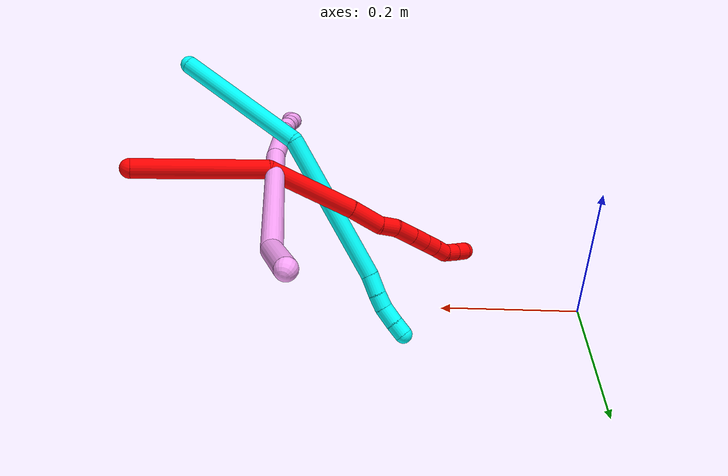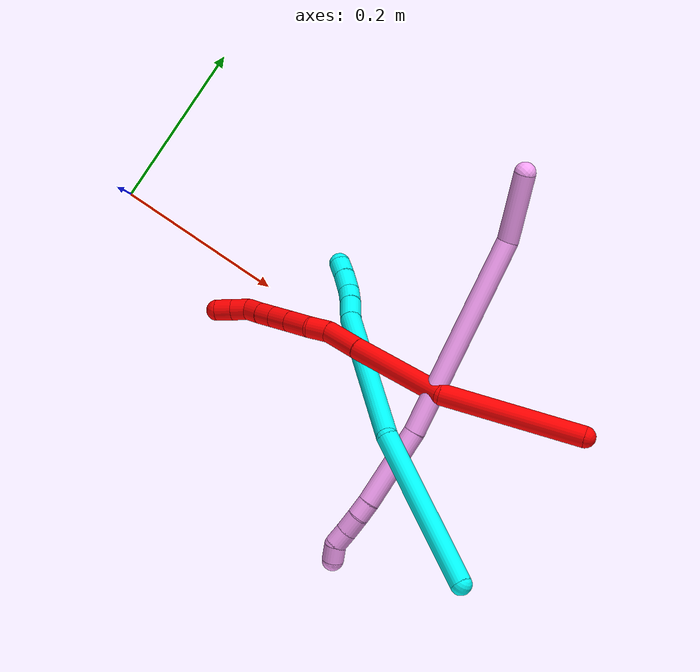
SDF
<sdf version="1.7">
 <world name="default">
  <model name="2">
   <static>0</static>
   <link name="2">
    <collision name="collision-cylinder-e_1_1_4">
     <pose>-0.023189 0.018988 -0.079342 -2.90669 -0.27694 1.73649</pose>
     <geometry><cylinder><radius>0.0125</radius><length>0.169629</length></cylinder></geometry>
     <surface>
      <friction><ode><mu>1.16</mu><mu2>1.16</mu2><slip1>0</slip1><slip2>0</slip2></ode></friction>
      <contact><ode><kp>1e+06</kp><kd>1</kd><max_vel>0</max_vel><min_depth>0.001</min_depth></ode></contact>
     </surface>
    </collision>
    <visual name="visual-cylinder-e_1_1_4">
     <pose>-0.023189 0.018988 -0.079342 -2.90669 -0.27694 1.73649</pose>
     <geometry><cylinder><radius>0.0125</radius><length>0.169629</length></cylinder></geometry>
     <material><ambient>1 0 0 1</ambient></material>
    </visual>
    <collision name="collision-cylinder-e_2_4_5">
     <pose>-0.04245 0.035373 -0.220183 3.09929 0.063738 1.96983</pose>
     <geometry><cylinder><radius>0.0125</radius><length>0.123358</length></cylinder></geometry>
     <surface>
      <friction><ode><mu>1.16</mu><mu2>1.16</mu2><slip1>0</slip1><slip2>0</slip2></ode></friction>
      <contact><ode><kp>1e+06</kp><kd>1</kd><max_vel>0</max_vel><min_depth>0.001</min_depth></ode></contact>
     </surface>
    </collision>
    <visual name="visual-cylinder-e_2_4_5">
     <pose>-0.04245 0.035373 -0.220183 3.09929 0.063738 1.96983</pose>
     <geometry><cylinder><radius>0.0125</radius><length>0.123358</length></cylinder></geometry>
     <material><ambient>1 0 0 1</ambient></material>
    </visual>
    <collision name="collision-cylinder-e_3_5_6">
     <pose>-0.035878 0.030624 -0.304625 3.04837 0.114223 1.77293</pose>
     <geometry><cylinder><radius>0.0125</radius><length>0.046388</length></cylinder></geometry>
     <surface>
      <friction><ode><mu>1.16</mu><mu2>1.16</mu2><slip1>0</slip1><slip2>0</slip2></ode></friction>
      <contact><ode><kp>1e+06</kp><kd>1</kd><max_vel>0</max_vel><min_depth>0.001</min_depth></ode></contact>
     </surface>
    </collision>
    <visual name="visual-cylinder-e_3_5_6">
     <pose>-0.035878 0.030624 -0.304625 3.04837 0.114223 1.77293</pose>
     <geometry><cylinder><radius>0.0125</radius><length>0.046388</length></cylinder></geometry>
     <material><ambient>1 0 0 1</ambient></material>
    </visual>
    <collision name="collision-cylinder-e_4_6_7">
     <pose>-0.036019 0.028513 -0.33995 -3.13883 -0.221199 3.11675</pose>
     <geometry><cylinder><radius>0.0125</radius><length>0.025383</length></cylinder></geometry>
     <surface>
      <friction><ode><mu>1.16</mu><mu2>1.16</mu2><slip1>0</slip1><slip2>0</slip2></ode></friction>
      <contact><ode><kp>1e+06</kp><kd>1</kd><max_vel>0</max_vel><min_depth>0.001</min_depth></ode></contact>
     </surface>
    </collision>
    <visual name="visual-cylinder-e_4_6_7">
     <pose>-0.036019 0.028513 -0.33995 -3.13883 -0.221199 3.11675</pose>
     <geometry><cylinder><radius>0.0125</radius><length>0.025383</length></cylinder></geometry>
     <material><ambient>1 0 0 1</ambient></material>
    </visual>
    <collision name="collision-cylinder-e_5_7_8">
     <pose>-0.039696 0.025449 -0.367116 2.93502 -0.059012 -0.554805</pose>
     <geometry><cylinder><radius>0.0125</radius><length>0.030263</length></cylinder></geometry>
     <surface>
      <friction><ode><mu>1.16</mu><mu2>1.16</mu2><slip1>0</slip1><slip2>0</slip2></ode></friction>
      <contact><ode><kp>1e+06</kp><kd>1</kd><max_vel>0</max_vel><min_depth>0.001</min_depth></ode></contact>
     </surface>
    </collision>
    <visual name="visual-cylinder-e_5_7_8">
     <pose>-0.039696 0.025449 -0.367116 2.93502 -0.059012 -0.554805</pose>
     <geometry><cylinder><radius>0.0125</radius><length>0.030263</length></cylinder></geometry>
     <material><ambient>1 0 0 1</ambient></material>
    </visual>
    <collision name="collision-cylinder-e_6_8_9">
     <pose>-0.041322 0.019716 -0.393725 2.92229 -0.06047 -0.536203</pose>
     <geometry><cylinder><radius>0.0125</radius><length>0.024274</length></cylinder></geometry>
     <surface>
      <friction><ode><mu>1.16</mu><mu2>1.16</mu2><slip1>0</slip1><slip2>0</slip2></ode></friction>
      <contact><ode><kp>1e+06</kp><kd>1</kd><max_vel>0</max_vel><min_depth>0.001</min_depth></ode></contact>
     </surface>
    </collision>
    <visual name="visual-cylinder-e_6_8_9">
     <pose>-0.041322 0.019716 -0.393725 2.92229 -0.06047 -0.536203</pose>
     <geometry><cylinder><radius>0.0125</radius><length>0.024274</length></cylinder></geometry>
     <material><ambient>1 0 0 1</ambient></material>
    </visual>
    <collision name="collision-cylinder-e_7_9_10">
     <pose>-0.042683 0.014843 -0.415602 2.9226 -0.060893 -0.540503</pose>
     <geometry><cylinder><radius>0.0125</radius><length>0.020636</length></cylinder></geometry>
     <surface>
      <friction><ode><mu>1.16</mu><mu2>1.16</mu2><slip1>0</slip1><slip2>0</slip2></ode></friction>
      <contact><ode><kp>1e+06</kp><kd>1</kd><max_vel>0</max_vel><min_depth>0.001</min_depth></ode></contact>
     </surface>
    </collision>
    <visual name="visual-cylinder-e_7_9_10">
     <pose>-0.042683 0.014843 -0.415602 2.9226 -0.060893 -0.540503</pose>
     <geometry><cylinder><radius>0.0125</radius><length>0.020636</length></cylinder></geometry>
     <material><ambient>1 0 0 1</ambient></material>
    </visual>
    <collision name="collision-cylinder-e_8_10_11">
     <pose>-0.043473 0.010333 -0.435396 2.91243 -0.016198 -0.140517</pose>
     <geometry><cylinder><radius>0.0125</radius><length>0.020006</length></cylinder></geometry>
     <surface>
      <friction><ode><mu>1.16</mu><mu2>1.16</mu2><slip1>0</slip1><slip2>0</slip2></ode></friction>
      <contact><ode><kp>1e+06</kp><kd>1</kd><max_vel>0</max_vel><min_depth>0.001</min_depth></ode></contact>
     </surface>
    </collision>
    <visual name="visual-cylinder-e_8_10_11">
     <pose>-0.043473 0.010333 -0.435396 2.91243 -0.016198 -0.140517</pose>
     <geometry><cylinder><radius>0.0125</radius><length>0.020006</length></cylinder></geometry>
     <material><ambient>1 0 0 1</ambient></material>
    </visual>
    <collision name="collision-cylinder-e_9_11_12">
     <pose>-0.048078 0.00747 -0.454077 3.07559 -0.460326 -2.86166</pose>
     <geometry><cylinder><radius>0.0125</radius><length>0.020003</length></cylinder></geometry>
     <surface>
      <friction><ode><mu>1.16</mu><mu2>1.16</mu2><slip1>0</slip1><slip2>0</slip2></ode></friction>
      <contact><ode><kp>1e+06</kp><kd>1</kd><max_vel>0</max_vel><min_depth>0.001</min_depth></ode></contact>
     </surface>
    </collision>
    <visual name="visual-cylinder-e_9_11_12">
     <pose>-0.048078 0.00747 -0.454077 3.07559 -0.460326 -2.86166</pose>
     <geometry><cylinder><radius>0.0125</radius><length>0.020003</length></cylinder></geometry>
     <material><ambient>1 0 0 1</ambient></material>
    </visual>
    <collision name="collision-cylinder-e_10_12_2">
     <pose>-0.057173 0.006464 -0.471894 3.09483 -0.482283 -2.95196</pose>
     <geometry><cylinder><radius>0.0125</radius><length>0.02006</length></cylinder></geometry>
     <surface>
      <friction><ode><mu>1.16</mu><mu2>1.16</mu2><slip1>0</slip1><slip2>0</slip2></ode></friction>
      <contact><ode><kp>1e+06</kp><kd>1</kd><max_vel>0</max_vel><min_depth>0.001</min_depth></ode></contact>
     </surface>
    </collision>
    <visual name="visual-cylinder-e_10_12_2">
     <pose>-0.057173 0.006464 -0.471894 3.09483 -0.482283 -2.95196</pose>
     <geometry><cylinder><radius>0.0125</radius><length>0.02006</length></cylinder></geometry>
     <material><ambient>1 0 0 1</ambient></material>
    </visual>
    <collision name="collision-sphere-2">
     <pose>-0.061825 0.006048 -0.48077 0 -0 0</pose>
     <geometry><sphere><radius>0.0125</radius></sphere></geometry>
     <surface>
      <friction><ode><mu>1.16</mu><mu2>1.16</mu2><slip1>0</slip1><slip2>0</slip2></ode></friction>
      <contact><ode><kp>1e+06</kp><kd>1</kd><max_vel>0</max_vel><min_depth>0.001</min_depth></ode></contact>
     </surface>
    </collision>
    <visual name="visual-sphere-2">
     <pose>-0.061825 0.006048 -0.48077 0 -0 0</pose>
     <geometry><sphere><radius>0.0125</radius></sphere></geometry>
     <material><ambient>1 0 0 1</ambient></material>
    </visual>
    <collision name="collision-sphere-12">
     <pose>-0.052521 0.006879 -0.463018 0 -0 0</pose>
     <geometry><sphere><radius>0.0125</radius></sphere></geometry>
     <surface>
      <friction><ode><mu>1.16</mu><mu2>1.16</mu2><slip1>0</slip1><slip2>0</slip2></ode></friction>
      <contact><ode><kp>1e+06</kp><kd>1</kd><max_vel>0</max_vel><min_depth>0.001</min_depth></ode></contact>
     </surface>
    </collision>
    <visual name="visual-sphere-12">
     <pose>-0.052521 0.006879 -0.463018 0 -0 0</pose>
     <geometry><sphere><radius>0.0125</radius></sphere></geometry>
     <material><ambient>1 0 0 1</ambient></material>
    </visual>
    <collision name="collision-sphere-11">
     <pose>-0.043635 0.008061 -0.445136 0 -0 0</pose>
     <geometry><sphere><radius>0.0125</radius></sphere></geometry>
     <surface>
      <friction><ode><mu>1.16</mu><mu2>1.16</mu2><slip1>0</slip1><slip2>0</slip2></ode></friction>
      <contact><ode><kp>1e+06</kp><kd>1</kd><max_vel>0</max_vel><min_depth>0.001</min_depth></ode></contact>
     </surface>
    </collision>
    <visual name="visual-sphere-11">
     <pose>-0.043635 0.008061 -0.445136 0 -0 0</pose>
     <geometry><sphere><radius>0.0125</radius></sphere></geometry>
     <material><ambient>1 0 0 1</ambient></material>
    </visual>
    <collision name="collision-sphere-10">
     <pose>-0.043311 0.012605 -0.425655 0 -0 0</pose>
     <geometry><sphere><radius>0.0125</radius></sphere></geometry>
     <surface>
      <friction><ode><mu>1.16</mu><mu2>1.16</mu2><slip1>0</slip1><slip2>0</slip2></ode></friction>
      <contact><ode><kp>1e+06</kp><kd>1</kd><max_vel>0</max_vel><min_depth>0.001</min_depth></ode></contact>
     </surface>
    </collision>
    <visual name="visual-sphere-10">
     <pose>-0.043311 0.012605 -0.425655 0 -0 0</pose>
     <geometry><sphere><radius>0.0125</radius></sphere></geometry>
     <material><ambient>1 0 0 1</ambient></material>
    </visual>
    <collision name="collision-sphere-9">
     <pose>-0.042055 0.01708 -0.405549 0 -0 0</pose>
     <geometry><sphere><radius>0.0125</radius></sphere></geometry>
     <surface>
      <friction><ode><mu>1.16</mu><mu2>1.16</mu2><slip1>0</slip1><slip2>0</slip2></ode></friction>
      <contact><ode><kp>1e+06</kp><kd>1</kd><max_vel>0</max_vel><min_depth>0.001</min_depth></ode></contact>
     </surface>
    </collision>
    <visual name="visual-sphere-9">
     <pose>-0.042055 0.01708 -0.405549 0 -0 0</pose>
     <geometry><sphere><radius>0.0125</radius></sphere></geometry>
     <material><ambient>1 0 0 1</ambient></material>
    </visual>
    <collision name="collision-sphere-4">
     <pose>-0.046379 0.037976 -0.158684 0 -0 0</pose>
     <geometry><sphere><radius>0.0125</radius></sphere></geometry>
     <surface>
      <friction><ode><mu>1.16</mu><mu2>1.16</mu2><slip1>0</slip1><slip2>0</slip2></ode></friction>
      <contact><ode><kp>1e+06</kp><kd>1</kd><max_vel>0</max_vel><min_depth>0.001</min_depth></ode></contact>
     </surface>
    </collision>
    <visual name="visual-sphere-4">
     <pose>-0.046379 0.037976 -0.158684 0 -0 0</pose>
     <geometry><sphere><radius>0.0125</radius></sphere></geometry>
     <material><ambient>1 0 0 1</ambient></material>
    </visual>
    <collision name="collision-sphere-1">
     <geometry><sphere><radius>0.0125</radius></sphere></geometry>
     <surface>
      <friction><ode><mu>1.16</mu><mu2>1.16</mu2><slip1>0</slip1><slip2>0</slip2></ode></friction>
      <contact><ode><kp>1e+06</kp><kd>1</kd><max_vel>0</max_vel><min_depth>0.001</min_depth></ode></contact>
     </surface>
    </collision>
    <visual name="visual-sphere-1">
     <geometry><sphere><radius>0.0125</radius></sphere></geometry>
     <material><ambient>1 0 0 1</ambient></material>
    </visual>
    <collision name="collision-sphere-8">
     <pose>-0.040588 0.022351 -0.3819 0 -0 0</pose>
     <geometry><sphere><radius>0.0125</radius></sphere></geometry>
     <surface>
      <friction><ode><mu>1.16</mu><mu2>1.16</mu2><slip1>0</slip1><slip2>0</slip2></ode></friction>
      <contact><ode><kp>1e+06</kp><kd>1</kd><max_vel>0</max_vel><min_depth>0.001</min_depth></ode></contact>
     </surface>
    </collision>
    <visual name="visual-sphere-8">
     <pose>-0.040588 0.022351 -0.3819 0 -0 0</pose>
     <geometry><sphere><radius>0.0125</radius></sphere></geometry>
     <material><ambient>1 0 0 1</ambient></material>
    </visual>
    <collision name="collision-sphere-5">
     <pose>-0.038521 0.032769 -0.281682 0 -0 0</pose>
     <geometry><sphere><radius>0.0125</radius></sphere></geometry>
     <surface>
      <friction><ode><mu>1.16</mu><mu2>1.16</mu2><slip1>0</slip1><slip2>0</slip2></ode></friction>
      <contact><ode><kp>1e+06</kp><kd>1</kd><max_vel>0</max_vel><min_depth>0.001</min_depth></ode></contact>
     </surface>
    </collision>
    <visual name="visual-sphere-5">
     <pose>-0.038521 0.032769 -0.281682 0 -0 0</pose>
     <geometry><sphere><radius>0.0125</radius></sphere></geometry>
     <material><ambient>1 0 0 1</ambient></material>
    </visual>
    <collision name="collision-sphere-6">
     <pose>-0.033234 0.028479 -0.327568 0 -0 0</pose>
     <geometry><sphere><radius>0.0125</radius></sphere></geometry>
     <surface>
      <friction><ode><mu>1.16</mu><mu2>1.16</mu2><slip1>0</slip1><slip2>0</slip2></ode></friction>
      <contact><ode><kp>1e+06</kp><kd>1</kd><max_vel>0</max_vel><min_depth>0.001</min_depth></ode></contact>
     </surface>
    </collision>
    <visual name="visual-sphere-6">
     <pose>-0.033234 0.028479 -0.327568 0 -0 0</pose>
     <geometry><sphere><radius>0.0125</radius></sphere></geometry>
     <material><ambient>1 0 0 1</ambient></material>
    </visual>
    <collision name="collision-sphere-7">
     <pose>-0.038803 0.028548 -0.352332 0 -0 0</pose>
     <geometry><sphere><radius>0.0125</radius></sphere></geometry>
     <surface>
      <friction><ode><mu>1.16</mu><mu2>1.16</mu2><slip1>0</slip1><slip2>0</slip2></ode></friction>
      <contact><ode><kp>1e+06</kp><kd>1</kd><max_vel>0</max_vel><min_depth>0.001</min_depth></ode></contact>
     </surface>
    </collision>
    <visual name="visual-sphere-7">
     <pose>-0.038803 0.028548 -0.352332 0 -0 0</pose>
     <geometry><sphere><radius>0.0125</radius></sphere></geometry>
     <material><ambient>1 0 0 1</ambient></material>
    </visual>
    <inertial>
     <pose>-0.035624 0.023539 -0.239767 0 -0 0</pose>
     <mass>0.5</mass>
     <inertia>
      <ixx>0.000414</ixx>
      <ixy>0</ixy>
      <ixz>0</ixz>
      <iyy>0.000702</iyy>
      <iyz>0</iyz>
      <izz>-1.6e-05</izz>
     </inertia>
    </inertial>
   </link>
   <pose>0.593774 0.060457 0.26092 1.049 0.365775 1.51322</pose>
  </model>
  <model name="3">
   <static>0</static>
   <link name="3">
    <collision name="collision-cylinder-e_1_1_4">
     <pose>-0.058626 0.071774 -0.024668 -1.90183 -0.657725 0.891998</pose>
     <geometry><cylinder><radius>0.0125</radius><length>0.191803</length></cylinder></geometry>
     <surface>
      <friction><ode><mu>1.16</mu><mu2>1.16</mu2><slip1>0</slip1><slip2>0</slip2></ode></friction>
      <contact><ode><kp>1e+06</kp><kd>1</kd><max_vel>0</max_vel><min_depth>0.001</min_depth></ode></contact>
     </surface>
    </collision>
    <visual name="visual-cylinder-e_1_1_4">
     <pose>-0.058626 0.071774 -0.024668 -1.90183 -0.657725 0.891998</pose>
     <geometry><cylinder><radius>0.0125</radius><length>0.191803</length></cylinder></geometry>
     <material><ambient>0.003922 1 0.996078 1</ambient></material>
    </visual>
    <collision name="collision-cylinder-e_2_4_5">
     <pose>-0.213618 0.188192 -0.05125 -1.61366 -1.13661 1.17585</pose>
     <geometry><cylinder><radius>0.0125</radius><length>0.212444</length></cylinder></geometry>
     <surface>
      <friction><ode><mu>1.16</mu><mu2>1.16</mu2><slip1>0</slip1><slip2>0</slip2></ode></friction>
      <contact><ode><kp>1e+06</kp><kd>1</kd><max_vel>0</max_vel><min_depth>0.001</min_depth></ode></contact>
     </surface>
    </collision>
    <visual name="visual-cylinder-e_2_4_5">
     <pose>-0.213618 0.188192 -0.05125 -1.61366 -1.13661 1.17585</pose>
     <geometry><cylinder><radius>0.0125</radius><length>0.212444</length></cylinder></geometry>
     <material><ambient>0.003922 1 0.996078 1</ambient></material>
    </visual>
    <collision name="collision-cylinder-e_3_5_6">
     <pose>-0.323715 0.237162 -0.055493 -2.06456 -1.22718 1.73462</pose>
     <geometry><cylinder><radius>0.0125</radius><length>0.029166</length></cylinder></geometry>
     <surface>
      <friction><ode><mu>1.16</mu><mu2>1.16</mu2><slip1>0</slip1><slip2>0</slip2></ode></friction>
      <contact><ode><kp>1e+06</kp><kd>1</kd><max_vel>0</max_vel><min_depth>0.001</min_depth></ode></contact>
     </surface>
    </collision>
    <visual name="visual-cylinder-e_3_5_6">
     <pose>-0.323715 0.237162 -0.055493 -2.06456 -1.22718 1.73462</pose>
     <geometry><cylinder><radius>0.0125</radius><length>0.029166</length></cylinder></geometry>
     <material><ambient>0.003922 1 0.996078 1</ambient></material>
    </visual>
    <collision name="collision-cylinder-e_4_6_7">
     <pose>-0.347109 0.245183 -0.058942 -1.86519 -1.1907 1.48007</pose>
     <geometry><cylinder><radius>0.0125</radius><length>0.020813</length></cylinder></geometry>
     <surface>
      <friction><ode><mu>1.16</mu><mu2>1.16</mu2><slip1>0</slip1><slip2>0</slip2></ode></friction>
      <contact><ode><kp>1e+06</kp><kd>1</kd><max_vel>0</max_vel><min_depth>0.001</min_depth></ode></contact>
     </surface>
    </collision>
    <visual name="visual-cylinder-e_4_6_7">
     <pose>-0.347109 0.245183 -0.058942 -1.86519 -1.1907 1.48007</pose>
     <geometry><cylinder><radius>0.0125</radius><length>0.020813</length></cylinder></geometry>
     <material><ambient>0.003922 1 0.996078 1</ambient></material>
    </visual>
    <collision name="collision-cylinder-e_5_7_8">
     <pose>-0.367483 0.255598 -0.062413 -1.90725 -0.984166 1.2939</pose>
     <geometry><cylinder><radius>0.0125</radius><length>0.025721</length></cylinder></geometry>
     <surface>
      <friction><ode><mu>1.16</mu><mu2>1.16</mu2><slip1>0</slip1><slip2>0</slip2></ode></friction>
      <contact><ode><kp>1e+06</kp><kd>1</kd><max_vel>0</max_vel><min_depth>0.001</min_depth></ode></contact>
     </surface>
    </collision>
    <visual name="visual-cylinder-e_5_7_8">
     <pose>-0.367483 0.255598 -0.062413 -1.90725 -0.984166 1.2939</pose>
     <geometry><cylinder><radius>0.0125</radius><length>0.025721</length></cylinder></geometry>
     <material><ambient>0.003922 1 0.996078 1</ambient></material>
    </visual>
    <collision name="collision-cylinder-e_6_8_2">
     <pose>-0.386374 0.267946 -0.066151 -1.81263 -0.95431 1.16677</pose>
     <geometry><cylinder><radius>0.0125</radius><length>0.020053</length></cylinder></geometry>
     <surface>
      <friction><ode><mu>1.16</mu><mu2>1.16</mu2><slip1>0</slip1><slip2>0</slip2></ode></friction>
      <contact><ode><kp>1e+06</kp><kd>1</kd><max_vel>0</max_vel><min_depth>0.001</min_depth></ode></contact>
     </surface>
    </collision>
    <visual name="visual-cylinder-e_6_8_2">
     <pose>-0.386374 0.267946 -0.066151 -1.81263 -0.95431 1.16677</pose>
     <geometry><cylinder><radius>0.0125</radius><length>0.020053</length></cylinder></geometry>
     <material><ambient>0.003922 1 0.996078 1</ambient></material>
    </visual>
    <collision name="collision-sphere-2">
     <pose>-0.394555 0.273575 -0.06754 0 -0 0</pose>
     <geometry><sphere><radius>0.0125</radius></sphere></geometry>
     <surface>
      <friction><ode><mu>1.16</mu><mu2>1.16</mu2><slip1>0</slip1><slip2>0</slip2></ode></friction>
      <contact><ode><kp>1e+06</kp><kd>1</kd><max_vel>0</max_vel><min_depth>0.001</min_depth></ode></contact>
     </surface>
    </collision>
    <visual name="visual-sphere-2">
     <pose>-0.394555 0.273575 -0.06754 0 -0 0</pose>
     <geometry><sphere><radius>0.0125</radius></sphere></geometry>
     <material><ambient>0.003922 1 0.996078 1</ambient></material>
    </visual>
    <collision name="collision-sphere-4">
     <pose>-0.117252 0.143549 -0.049335 0 -0 0</pose>
     <geometry><sphere><radius>0.0125</radius></sphere></geometry>
     <surface>
      <friction><ode><mu>1.16</mu><mu2>1.16</mu2><slip1>0</slip1><slip2>0</slip2></ode></friction>
      <contact><ode><kp>1e+06</kp><kd>1</kd><max_vel>0</max_vel><min_depth>0.001</min_depth></ode></contact>
     </surface>
    </collision>
    <visual name="visual-sphere-4">
     <pose>-0.117252 0.143549 -0.049335 0 -0 0</pose>
     <geometry><sphere><radius>0.0125</radius></sphere></geometry>
     <material><ambient>0.003922 1 0.996078 1</ambient></material>
    </visual>
    <collision name="collision-sphere-1">
     <geometry><sphere><radius>0.0125</radius></sphere></geometry>
     <surface>
      <friction><ode><mu>1.16</mu><mu2>1.16</mu2><slip1>0</slip1><slip2>0</slip2></ode></friction>
      <contact><ode><kp>1e+06</kp><kd>1</kd><max_vel>0</max_vel><min_depth>0.001</min_depth></ode></contact>
     </surface>
    </collision>
    <visual name="visual-sphere-1">
     <geometry><sphere><radius>0.0125</radius></sphere></geometry>
     <material><ambient>0.003922 1 0.996078 1</ambient></material>
    </visual>
    <collision name="collision-sphere-8">
     <pose>-0.378194 0.262318 -0.064763 0 -0 0</pose>
     <geometry><sphere><radius>0.0125</radius></sphere></geometry>
     <surface>
      <friction><ode><mu>1.16</mu><mu2>1.16</mu2><slip1>0</slip1><slip2>0</slip2></ode></friction>
      <contact><ode><kp>1e+06</kp><kd>1</kd><max_vel>0</max_vel><min_depth>0.001</min_depth></ode></contact>
     </surface>
    </collision>
    <visual name="visual-sphere-8">
     <pose>-0.378194 0.262318 -0.064763 0 -0 0</pose>
     <geometry><sphere><radius>0.0125</radius></sphere></geometry>
     <material><ambient>0.003922 1 0.996078 1</ambient></material>
    </visual>
    <collision name="collision-sphere-5">
     <pose>-0.309984 0.232836 -0.053165 0 -0 0</pose>
     <geometry><sphere><radius>0.0125</radius></sphere></geometry>
     <surface>
      <friction><ode><mu>1.16</mu><mu2>1.16</mu2><slip1>0</slip1><slip2>0</slip2></ode></friction>
      <contact><ode><kp>1e+06</kp><kd>1</kd><max_vel>0</max_vel><min_depth>0.001</min_depth></ode></contact>
     </surface>
    </collision>
    <visual name="visual-sphere-5">
     <pose>-0.309984 0.232836 -0.053165 0 -0 0</pose>
     <geometry><sphere><radius>0.0125</radius></sphere></geometry>
     <material><ambient>0.003922 1 0.996078 1</ambient></material>
    </visual>
    <collision name="collision-sphere-6">
     <pose>-0.337445 0.241488 -0.057822 0 -0 0</pose>
     <geometry><sphere><radius>0.0125</radius></sphere></geometry>
     <surface>
      <friction><ode><mu>1.16</mu><mu2>1.16</mu2><slip1>0</slip1><slip2>0</slip2></ode></friction>
      <contact><ode><kp>1e+06</kp><kd>1</kd><max_vel>0</max_vel><min_depth>0.001</min_depth></ode></contact>
     </surface>
    </collision>
    <visual name="visual-sphere-6">
     <pose>-0.337445 0.241488 -0.057822 0 -0 0</pose>
     <geometry><sphere><radius>0.0125</radius></sphere></geometry>
     <material><ambient>0.003922 1 0.996078 1</ambient></material>
    </visual>
    <collision name="collision-sphere-7">
     <pose>-0.356773 0.248878 -0.060062 0 -0 0</pose>
     <geometry><sphere><radius>0.0125</radius></sphere></geometry>
     <surface>
      <friction><ode><mu>1.16</mu><mu2>1.16</mu2><slip1>0</slip1><slip2>0</slip2></ode></friction>
      <contact><ode><kp>1e+06</kp><kd>1</kd><max_vel>0</max_vel><min_depth>0.001</min_depth></ode></contact>
     </surface>
    </collision>
    <visual name="visual-sphere-7">
     <pose>-0.356773 0.248878 -0.060062 0 -0 0</pose>
     <geometry><sphere><radius>0.0125</radius></sphere></geometry>
     <material><ambient>0.003922 1 0.996078 1</ambient></material>
    </visual>
    <inertial>
     <pose>-0.180985 0.155429 -0.042793 0 -0 0</pose>
     <mass>0.5</mass>
     <inertia><ixx>0.00108</ixx><ixy>0</ixy><ixz>0</ixz><iyy>0.001521</iyy><iyz>0</iyz><izz>0.00031</izz></inertia>
    </inertial>
   </link>
   <pose>0.566434 -0.149637 0.310898 2.99999 -1.08424 -1.37226</pose>
  </model>
  <model name="4">
   <static>0</static>
   <link name="4">
    <collision name="collision-cylinder-e_1_1_4">
     <pose>0.003263 0.02725 0.030678 -0.726291 0.07935 -0.030166</pose>
     <geometry><cylinder><radius>0.0125</radius><length>0.082325</length></cylinder></geometry>
     <surface>
      <friction><ode><mu>1.16</mu><mu2>1.16</mu2><slip1>0</slip1><slip2>0</slip2></ode></friction>
      <contact><ode><kp>1e+06</kp><kd>1</kd><max_vel>0</max_vel><min_depth>0.001</min_depth></ode></contact>
     </surface>
    </collision>
    <visual name="visual-cylinder-e_1_1_4">
     <pose>0.003263 0.02725 0.030678 -0.726291 0.07935 -0.030166</pose>
     <geometry><cylinder><radius>0.0125</radius><length>0.082325</length></cylinder></geometry>
     <material><ambient>1 0.65098 0.996078 1</ambient></material>
    </visual>
    <collision name="collision-cylinder-e_2_4_5">
     <pose>0.002414 0.097774 0.172963 -0.369889 -0.034335 0.006424</pose>
     <geometry><cylinder><radius>0.0125</radius><length>0.239548</length></cylinder></geometry>
     <surface>
      <friction><ode><mu>1.16</mu><mu2>1.16</mu2><slip1>0</slip1><slip2>0</slip2></ode></friction>
      <contact><ode><kp>1e+06</kp><kd>1</kd><max_vel>0</max_vel><min_depth>0.001</min_depth></ode></contact>
     </surface>
    </collision>
    <visual name="visual-cylinder-e_2_4_5">
     <pose>0.002414 0.097774 0.172963 -0.369889 -0.034335 0.006424</pose>
     <geometry><cylinder><radius>0.0125</radius><length>0.239548</length></cylinder></geometry>
     <material><ambient>1 0.65098 0.996078 1</ambient></material>
    </visual>
    <collision name="collision-cylinder-e_3_5_6">
     <pose>0.000347 0.154011 0.330064 -0.277586 0.043197 -0.006035</pose>
     <geometry><cylinder><radius>0.0125</radius><length>0.094696</length></cylinder></geometry>
     <surface>
      <friction><ode><mu>1.16</mu><mu2>1.16</mu2><slip1>0</slip1><slip2>0</slip2></ode></friction>
      <contact><ode><kp>1e+06</kp><kd>1</kd><max_vel>0</max_vel><min_depth>0.001</min_depth></ode></contact>
     </surface>
    </collision>
    <visual name="visual-cylinder-e_3_5_6">
     <pose>0.000347 0.154011 0.330064 -0.277586 0.043197 -0.006035</pose>
     <geometry><cylinder><radius>0.0125</radius><length>0.094696</length></cylinder></geometry>
     <material><ambient>1 0.65098 0.996078 1</ambient></material>
    </visual>
    <collision name="collision-cylinder-e_4_6_7">
     <pose>0.003794 0.169753 0.385359 -0.2762 0.13675 -0.019035</pose>
     <geometry><cylinder><radius>0.0125</radius><length>0.02057</length></cylinder></geometry>
     <surface>
      <friction><ode><mu>1.16</mu><mu2>1.16</mu2><slip1>0</slip1><slip2>0</slip2></ode></friction>
      <contact><ode><kp>1e+06</kp><kd>1</kd><max_vel>0</max_vel><min_depth>0.001</min_depth></ode></contact>
     </surface>
    </collision>
    <visual name="visual-cylinder-e_4_6_7">
     <pose>0.003794 0.169753 0.385359 -0.2762 0.13675 -0.019035</pose>
     <geometry><cylinder><radius>0.0125</radius><length>0.02057</length></cylinder></geometry>
     <material><ambient>1 0.65098 0.996078 1</ambient></material>
    </visual>
    <collision name="collision-cylinder-e_5_7_8">
     <pose>0.008019 0.176225 0.405344 -0.347992 0.254963 -0.045052</pose>
     <geometry><cylinder><radius>0.0125</radius><length>0.022386</length></cylinder></geometry>
     <surface>
      <friction><ode><mu>1.16</mu><mu2>1.16</mu2><slip1>0</slip1><slip2>0</slip2></ode></friction>
      <contact><ode><kp>1e+06</kp><kd>1</kd><max_vel>0</max_vel><min_depth>0.001</min_depth></ode></contact>
     </surface>
    </collision>
    <visual name="visual-cylinder-e_5_7_8">
     <pose>0.008019 0.176225 0.405344 -0.347992 0.254963 -0.045052</pose>
     <geometry><cylinder><radius>0.0125</radius><length>0.022386</length></cylinder></geometry>
     <material><ambient>1 0.65098 0.996078 1</ambient></material>
    </visual>
    <collision name="collision-cylinder-e_6_8_9">
     <pose>0.013369 0.182835 0.424979 -0.299271 0.250069 -0.037894</pose>
     <geometry><cylinder><radius>0.0125</radius><length>0.020421</length></cylinder></geometry>
     <surface>
      <friction><ode><mu>1.16</mu><mu2>1.16</mu2><slip1>0</slip1><slip2>0</slip2></ode></friction>
      <contact><ode><kp>1e+06</kp><kd>1</kd><max_vel>0</max_vel><min_depth>0.001</min_depth></ode></contact>
     </surface>
    </collision>
    <visual name="visual-cylinder-e_6_8_9">
     <pose>0.013369 0.182835 0.424979 -0.299271 0.250069 -0.037894</pose>
     <geometry><cylinder><radius>0.0125</radius><length>0.020421</length></cylinder></geometry>
     <material><ambient>1 0.65098 0.996078 1</ambient></material>
    </visual>
    <collision name="collision-cylinder-e_7_9_2">
     <pose>0.01605 0.19264 0.441717 -0.757424 0.015378 -0.006119</pose>
     <geometry><cylinder><radius>0.0125</radius><length>0.020055</length></cylinder></geometry>
     <surface>
      <friction><ode><mu>1.16</mu><mu2>1.16</mu2><slip1>0</slip1><slip2>0</slip2></ode></friction>
      <contact><ode><kp>1e+06</kp><kd>1</kd><max_vel>0</max_vel><min_depth>0.001</min_depth></ode></contact>
     </surface>
    </collision>
    <visual name="visual-cylinder-e_7_9_2">
     <pose>0.01605 0.19264 0.441717 -0.757424 0.015378 -0.006119</pose>
     <geometry><cylinder><radius>0.0125</radius><length>0.020055</length></cylinder></geometry>
     <material><ambient>1 0.65098 0.996078 1</ambient></material>
    </visual>
    <collision name="collision-sphere-2">
     <pose>0.016204 0.199529 0.449002 0 -0 0</pose>
     <geometry><sphere><radius>0.0125</radius></sphere></geometry>
     <surface>
      <friction><ode><mu>1.16</mu><mu2>1.16</mu2><slip1>0</slip1><slip2>0</slip2></ode></friction>
      <contact><ode><kp>1e+06</kp><kd>1</kd><max_vel>0</max_vel><min_depth>0.001</min_depth></ode></contact>
     </surface>
    </collision>
    <visual name="visual-sphere-2">
     <pose>0.016204 0.199529 0.449002 0 -0 0</pose>
     <geometry><sphere><radius>0.0125</radius></sphere></geometry>
     <material><ambient>1 0.65098 0.996078 1</ambient></material>
    </visual>
    <collision name="collision-sphere-9">
     <pose>0.015895 0.185751 0.434432 0 -0 0</pose>
     <geometry><sphere><radius>0.0125</radius></sphere></geometry>
     <surface>
      <friction><ode><mu>1.16</mu><mu2>1.16</mu2><slip1>0</slip1><slip2>0</slip2></ode></friction>
      <contact><ode><kp>1e+06</kp><kd>1</kd><max_vel>0</max_vel><min_depth>0.001</min_depth></ode></contact>
     </surface>
    </collision>
    <visual name="visual-sphere-9">
     <pose>0.015895 0.185751 0.434432 0 -0 0</pose>
     <geometry><sphere><radius>0.0125</radius></sphere></geometry>
     <material><ambient>1 0.65098 0.996078 1</ambient></material>
    </visual>
    <collision name="collision-sphere-4">
     <pose>0.006526 0.0545 0.061356 0 -0 0</pose>
     <geometry><sphere><radius>0.0125</radius></sphere></geometry>
     <surface>
      <friction><ode><mu>1.16</mu><mu2>1.16</mu2><slip1>0</slip1><slip2>0</slip2></ode></friction>
      <contact><ode><kp>1e+06</kp><kd>1</kd><max_vel>0</max_vel><min_depth>0.001</min_depth></ode></contact>
     </surface>
    </collision>
    <visual name="visual-sphere-4">
     <pose>0.006526 0.0545 0.061356 0 -0 0</pose>
     <geometry><sphere><radius>0.0125</radius></sphere></geometry>
     <material><ambient>1 0.65098 0.996078 1</ambient></material>
    </visual>
    <collision name="collision-sphere-1">
     <geometry><sphere><radius>0.0125</radius></sphere></geometry>
     <surface>
      <friction><ode><mu>1.16</mu><mu2>1.16</mu2><slip1>0</slip1><slip2>0</slip2></ode></friction>
      <contact><ode><kp>1e+06</kp><kd>1</kd><max_vel>0</max_vel><min_depth>0.001</min_depth></ode></contact>
     </surface>
    </collision>
    <visual name="visual-sphere-1">
     <geometry><sphere><radius>0.0125</radius></sphere></geometry>
     <material><ambient>1 0.65098 0.996078 1</ambient></material>
    </visual>
    <collision name="collision-sphere-8">
     <pose>0.010842 0.179918 0.415526 0 -0 0</pose>
     <geometry><sphere><radius>0.0125</radius></sphere></geometry>
     <surface>
      <friction><ode><mu>1.16</mu><mu2>1.16</mu2><slip1>0</slip1><slip2>0</slip2></ode></friction>
      <contact><ode><kp>1e+06</kp><kd>1</kd><max_vel>0</max_vel><min_depth>0.001</min_depth></ode></contact>
     </surface>
    </collision>
    <visual name="visual-sphere-8">
     <pose>0.010842 0.179918 0.415526 0 -0 0</pose>
     <geometry><sphere><radius>0.0125</radius></sphere></geometry>
     <material><ambient>1 0.65098 0.996078 1</ambient></material>
    </visual>
    <collision name="collision-sphere-5">
     <pose>-0.001698 0.141048 0.284571 0 -0 0</pose>
     <geometry><sphere><radius>0.0125</radius></sphere></geometry>
     <surface>
      <friction><ode><mu>1.16</mu><mu2>1.16</mu2><slip1>0</slip1><slip2>0</slip2></ode></friction>
      <contact><ode><kp>1e+06</kp><kd>1</kd><max_vel>0</max_vel><min_depth>0.001</min_depth></ode></contact>
     </surface>
    </collision>
    <visual name="visual-sphere-5">
     <pose>-0.001698 0.141048 0.284571 0 -0 0</pose>
     <geometry><sphere><radius>0.0125</radius></sphere></geometry>
     <material><ambient>1 0.65098 0.996078 1</ambient></material>
    </visual>
    <collision name="collision-sphere-6">
     <pose>0.002392 0.166974 0.375556 0 -0 0</pose>
     <geometry><sphere><radius>0.0125</radius></sphere></geometry>
     <surface>
      <friction><ode><mu>1.16</mu><mu2>1.16</mu2><slip1>0</slip1><slip2>0</slip2></ode></friction>
      <contact><ode><kp>1e+06</kp><kd>1</kd><max_vel>0</max_vel><min_depth>0.001</min_depth></ode></contact>
     </surface>
    </collision>
    <visual name="visual-sphere-6">
     <pose>0.002392 0.166974 0.375556 0 -0 0</pose>
     <geometry><sphere><radius>0.0125</radius></sphere></geometry>
     <material><ambient>1 0.65098 0.996078 1</ambient></material>
    </visual>
    <collision name="collision-sphere-7">
     <pose>0.005196 0.172531 0.395162 0 -0 0</pose>
     <geometry><sphere><radius>0.0125</radius></sphere></geometry>
     <surface>
      <friction><ode><mu>1.16</mu><mu2>1.16</mu2><slip1>0</slip1><slip2>0</slip2></ode></friction>
      <contact><ode><kp>1e+06</kp><kd>1</kd><max_vel>0</max_vel><min_depth>0.001</min_depth></ode></contact>
     </surface>
    </collision>
    <visual name="visual-sphere-7">
     <pose>0.005196 0.172531 0.395162 0 -0 0</pose>
     <geometry><sphere><radius>0.0125</radius></sphere></geometry>
     <material><ambient>1 0.65098 0.996078 1</ambient></material>
    </visual>
    <inertial>
     <pose>0.003464 0.110566 0.219504 0 -0 0</pose>
     <mass>0.5</mass>
     <inertia>
      <ixx>0.001291</ixx>
      <ixy>0</ixy>
      <ixz>0</ixz>
      <iyy>0.001212</iyy>
      <iyz>0</iyz>
      <izz>-0.000406</izz>
     </inertia>
    </inertial>
   </link>
   <pose>0.373916 0.266317 0.272242 -1.35851 0.898702 3.13613</pose>
  </model>
 </world>
</sdf>
